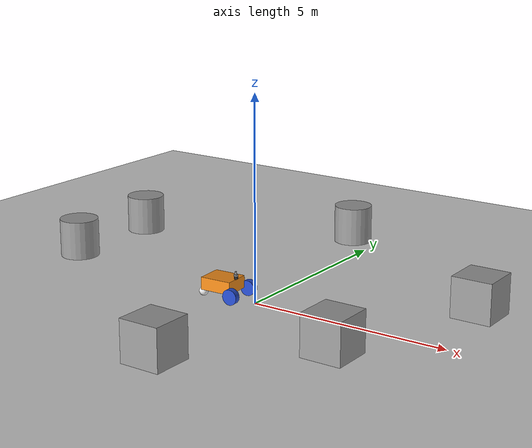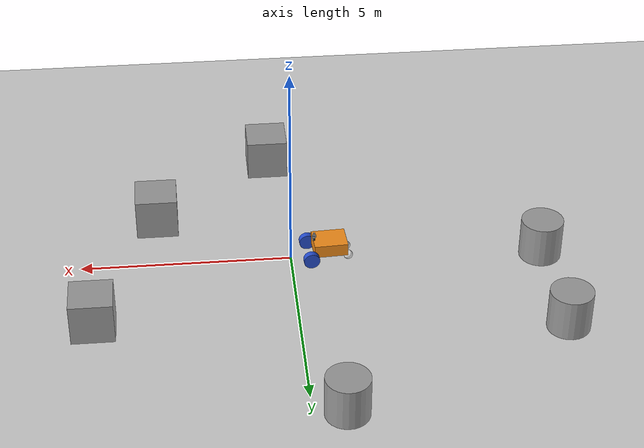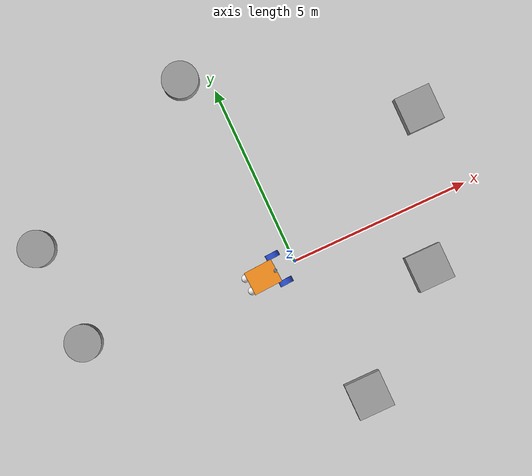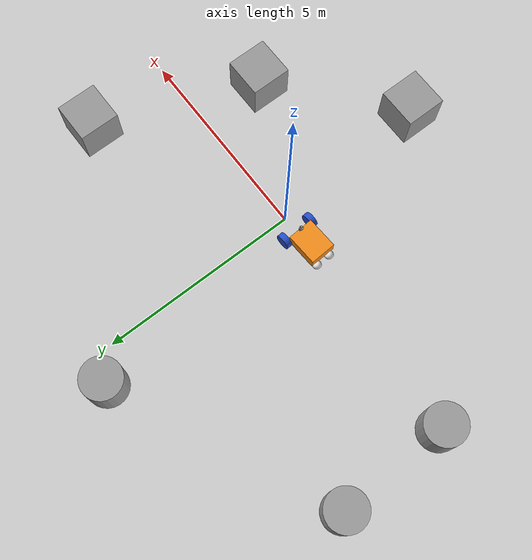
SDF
<sdf version="1.7">
 <world name="default">
  <light name="sun" type="directional">
   <pose>0 0 10 0 -0 0</pose>
   <diffuse>0.8 0.8 0.8 1</diffuse>
   <specular>0.2 0.2 0.2 1</specular>
   <attenuation>
    <range>1000</range>
    <constant>0.9</constant>
    <linear>0.01</linear>
    <quadratic>0.001</quadratic>
   </attenuation>
   <direction>-0.5 0.1 -0.9</direction>
   <spot><inner_angle>0</inner_angle><outer_angle>0</outer_angle><falloff>0</falloff></spot>
  </light>
  <model name="ground_plane">
   <static>1</static>
   <link name="link">
    <collision name="collision">
     <geometry><plane><normal>0 0 1</normal><size>100 100</size></plane></geometry>
     <surface><friction><ode><mu>100</mu><mu2>50</mu2></ode></friction></surface>
    </collision>
    <visual name="visual">
     <cast_shadows>0</cast_shadows>
     <geometry><plane><normal>0 0 1</normal><size>100 100</size></plane></geometry>
     <material>
      <script><uri>file://media/materials/scripts/gazebo.material</uri><name>Gazebo/Grey</name></script>
     </material>
    </visual>
   </link>
  </model>
  <gravity>0 0 -9.8</gravity>
  <magnetic_field>6e-06 2.3e-05 -4.2e-05</magnetic_field>
  <atmosphere type="adiabatic"/>
  <physics type="ode">
   <max_step_size>0.001</max_step_size>
   <real_time_factor>1</real_time_factor>
   <real_time_update_rate>1000</real_time_update_rate>
  </physics>
  <scene><ambient>0.4 0.4 0.4 1</ambient><background>0.7 0.7 0.7 1</background><shadows>1</shadows></scene>
  <audio><device>default</device></audio>
  <spherical_coordinates>
   <surface_model>EARTH_WGS84</surface_model>
   <latitude_deg>0</latitude_deg>
   <longitude_deg>0</longitude_deg>
   <elevation>0</elevation>
   <heading_deg>0</heading_deg>
  </spherical_coordinates>
  <model name="my_bot">
   <link name="base_link">
    <inertial>
     <pose>-0.512334 0 -0.02003 0 -0 0</pose>
     <mass>48.293</mass>
     <inertia>
      <ixx>2.24411</ixx>
      <ixy>0</ixy>
      <ixz>-0.308126</ixz>
      <iyy>3.50183</iyy>
      <iyz>0</iyz>
      <izz>4.66655</izz>
     </inertia>
    </inertial>
    <collision name="base_link_fixed_joint_lump__caster_wheel1_collision">
     <pose>-0.91 0.1875 -0.24 0 -0 0</pose>
     <geometry><sphere><radius>0.11</radius></sphere></geometry>
     <surface><friction><ode><mu>0.001</mu><mu2>0.001</mu2></ode></friction></surface>
    </collision>
    <collision name="base_link_fixed_joint_lump__caster_wheel2_collision_1">
     <pose>-0.91 -0.1875 -0.24 0 -0 0</pose>
     <geometry><sphere><radius>0.11</radius></sphere></geometry>
     <surface><friction><ode><mu>0.001</mu><mu2>0.001</mu2></ode></friction></surface>
    </collision>
    <collision name="base_link_fixed_joint_lump__chassis_collision_2">
     <pose>-0.485 0 -0.005 0 -0 0</pose>
     <geometry><box><size>0.8 0.65 0.31</size></box></geometry>
    </collision>
    <collision name="base_link_fixed_joint_lump__laser_frame_collision_3">
     <pose>-0.115 0 0.24 0 -0 3.14159</pose>
     <geometry><cylinder><length>0.04</length><radius>0.05</radius></cylinder></geometry>
    </collision>
    <visual name="base_link_fixed_joint_lump__caster_wheel1_visual">
     <pose>-0.91 0.1875 -0.24 0 -0 0</pose>
     <geometry><sphere><radius>0.11</radius></sphere></geometry>
     <material>
      <script><name>Gazebo/White</name><uri>file://media/materials/scripts/gazebo.material</uri></script>
     </material>
    </visual>
    <visual name="base_link_fixed_joint_lump__caster_wheel2_visual_1">
     <pose>-0.91 -0.1875 -0.24 0 -0 0</pose>
     <geometry><sphere><radius>0.11</radius></sphere></geometry>
     <material>
      <script><name>Gazebo/White</name><uri>file://media/materials/scripts/gazebo.material</uri></script>
     </material>
    </visual>
    <visual name="base_link_fixed_joint_lump__chassis_visual_2">
     <pose>-0.485 0 -0.005 0 -0 0</pose>
     <geometry><box><size>0.8 0.65 0.31</size></box></geometry>
     <material>
      <script><name>Gazebo/Orange</name><uri>file://media/materials/scripts/gazebo.material</uri></script>
     </material>
    </visual>
    <visual name="base_link_fixed_joint_lump__camera_link_visual_3">
     <pose>-0.105 0 0.18 0 -0 0</pose>
     <geometry><box><size>0.05 0.1 0.08</size></box></geometry>
     <material>
      <script><name>Gazebo/Black</name><uri>file://media/materials/scripts/gazebo.material</uri></script>
     </material>
    </visual>
    <visual name="base_link_fixed_joint_lump__laser_frame_visual_4">
     <pose>-0.115 0 0.24 0 -0 3.14159</pose>
     <geometry><cylinder><length>0.04</length><radius>0.05</radius></cylinder></geometry>
     <material>
      <script><name>Gazebo/Gray</name><uri>file://media/materials/scripts/gazebo.material</uri></script>
     </material>
    </visual>
    <visual name="base_link_fixed_joint_lump__laser_frame_visual_5">
     <pose>-0.115 0 0.28 0 -0 3.14159</pose>
     <geometry><cylinder><length>0.1</length><radius>0.025</radius></cylinder></geometry>
     <material>
      <script><name>Gazebo/Gray</name><uri>file://media/materials/scripts/gazebo.material</uri></script>
     </material>
    </visual>
    <sensor name="camera" type="camera">
     <visualize>1</visualize>
     <update_rate>10</update_rate>
     <camera>
      <horizontal_fov>1.089</horizontal_fov>
      <image><format>R8G8B8</format><width>640</width><height>480</height></image>
      <clip><near>0.05</near><far>20</far></clip>
     </camera>
     <plugin name="camera_controller" filename="libgazebo_ros_camera.so">
      <ros>
       <remapping>~/image_raw:=/camera/image_raw</remapping>
       <remapping>~/camera_info:=/camera/camera_info</remapping>
      </ros>
      <frame_name>camera_link_optical</frame_name>
     </plugin>
     <pose>-0.105 0 0.18 0 -0 0</pose>
    </sensor>
    <sensor name="laser" type="ray">
     <visualize>1</visualize>
     <update_rate>10</update_rate>
     <ray>
      <scan>
       <horizontal>
        <samples>360</samples>
        <min_angle>-3.14</min_angle>
        <max_angle>3.14</max_angle>
        <resolution>1</resolution>
       </horizontal>
       <vertical><samples>1</samples><min_angle>0</min_angle><max_angle>0</max_angle></vertical>
      </scan>
      <range><min>0.3</min><max>12</max></range>
     </ray>
     <plugin name="laser_controller" filename="libgazebo_ros_ray_sensor.so">
      <ros><remapping>~/out:=scan</remapping></ros>
      <output_type>sensor_msgs/LaserScan</output_type>
      <frame_name>laser_frame</frame_name>
     </plugin>
     <pose>-0.115 0 0.24 0 -0 3.14159</pose>
    </sensor>
   </link>
   <joint name="left_wheel_joint" type="revolute">
    <pose relative_to="base_link">0 0.39 -0.16 -1.5708 0 0</pose>
    <parent>base_link</parent>
    <child>left_wheel</child>
    <axis>
     <xyz>0 0 1</xyz>
     <limit><lower>-1e+16</lower><upper>1e+16</upper></limit>
     <dynamics><spring_reference>0</spring_reference><spring_stiffness>0</spring_stiffness></dynamics>
    </axis>
   </joint>
   <link name="left_wheel">
    <pose relative_to="left_wheel_joint">0 0 0 0 -0 0</pose>
    <inertial>
     <mass>3.17</mass>
     <inertia>
      <ixx>0.034553</ixx>
      <ixy>0</ixy>
      <ixz>0</ixz>
      <iyy>0.034553</iyy>
      <iyz>0</iyz>
      <izz>0.0572185</izz>
     </inertia>
    </inertial>
    <collision name="left_wheel_collision"><geometry><sphere><radius>0.19</radius></sphere></geometry></collision>
    <visual name="left_wheel_visual">
     <geometry><cylinder><length>0.15</length><radius>0.19</radius></cylinder></geometry>
     <material>
      <script><name>Gazebo/Blue</name><uri>file://media/materials/scripts/gazebo.material</uri></script>
     </material>
    </visual>
   </link>
   <joint name="right_wheel_joint" type="revolute">
    <pose relative_to="base_link">0 -0.39 -0.16 1.5708 -0 0</pose>
    <parent>base_link</parent>
    <child>right_wheel</child>
    <axis>
     <xyz>0 0 -1</xyz>
     <limit><lower>-1e+16</lower><upper>1e+16</upper></limit>
     <dynamics><spring_reference>0</spring_reference><spring_stiffness>0</spring_stiffness></dynamics>
    </axis>
   </joint>
   <link name="right_wheel">
    <pose relative_to="right_wheel_joint">0 0 0 0 -0 0</pose>
    <inertial>
     <mass>3.17</mass>
     <inertia>
      <ixx>0.034553</ixx>
      <ixy>0</ixy>
      <ixz>0</ixz>
      <iyy>0.034553</iyy>
      <iyz>0</iyz>
      <izz>0.0572185</izz>
     </inertia>
    </inertial>
    <collision name="right_wheel_collision">
     <geometry><sphere><radius>0.19</radius></sphere></geometry>
    </collision>
    <visual name="right_wheel_visual">
     <geometry><cylinder><length>0.15</length><radius>0.19</radius></cylinder></geometry>
     <material>
      <script><name>Gazebo/Blue</name><uri>file://media/materials/scripts/gazebo.material</uri></script>
     </material>
    </visual>
   </link>
   <static>0</static>
   <plugin name="gazebo_ros2_control" filename="libgazebo_ros2_control.so">
    <parameters>/home/dionsetiawan/dev_ws/install/articubot_one/share/articubot_one/config/my_controllers.yaml</parameters>
    <parameters>/home/dionsetiawan/dev_ws/install/articubot_one/share/articubot_one/config/gaz_ros2_ctl_use_sim.yaml</parameters>
   </plugin>
   <pose>-0.445837 -0.005924 0.349996 9e-06 3e-06 0.054234</pose>
  </model>
  <model name="unit_box">
   <pose>3.15709 -1.6385 0.499995 -1e-05 -0 -0</pose>
   <link name="link">
    <inertial>
     <mass>1</mass>
     <inertia>
      <ixx>0.166667</ixx>
      <ixy>0</ixy>
      <ixz>0</ixz>
      <iyy>0.166667</iyy>
      <iyz>0</iyz>
      <izz>0.166667</izz>
     </inertia>
    </inertial>
    <collision name="collision"><geometry><box><size>1 1 1</size></box></geometry></collision>
    <visual name="visual">
     <geometry><box><size>1 1 1</size></box></geometry>
     <material>
      <script><name>Gazebo/Grey</name><uri>file://media/materials/scripts/gazebo.material</uri></script>
     </material>
    </visual>
   </link>
  </model>
  <model name="unit_box_0">
   <pose>4.65916 2.26838 0.499995 0 1e-05 0</pose>
   <link name="link">
    <inertial>
     <mass>1</mass>
     <inertia>
      <ixx>0.166667</ixx>
      <ixy>0</ixy>
      <ixz>0</ixz>
      <iyy>0.166667</iyy>
      <iyz>0</iyz>
      <izz>0.166667</izz>
     </inertia>
    </inertial>
    <collision name="collision"><geometry><box><size>1 1 1</size></box></geometry></collision>
    <visual name="visual">
     <geometry><box><size>1 1 1</size></box></geometry>
     <material>
      <script><name>Gazebo/Grey</name><uri>file://media/materials/scripts/gazebo.material</uri></script>
     </material>
    </visual>
   </link>
  </model>
  <model name="unit_cylinder">
   <pose>-0.732592 5.6021 0.5 0 0 -0.06385</pose>
   <link name="link">
    <inertial>
     <mass>1</mass>
     <inertia><ixx>0.145833</ixx><ixy>0</ixy><ixz>0</ixz><iyy>0.145833</iyy><iyz>0</iyz><izz>0.125</izz></inertia>
    </inertial>
    <collision name="collision">
     <geometry><cylinder><radius>0.5</radius><length>1</length></cylinder></geometry>
    </collision>
    <visual name="visual">
     <geometry><cylinder><radius>0.5</radius><length>1</length></cylinder></geometry>
     <material>
      <script><name>Gazebo/Grey</name><uri>file://media/materials/scripts/gazebo.material</uri></script>
     </material>
    </visual>
   </link>
  </model>
  <model name="unit_box_1">
   <pose>0.304697 -4.02562 0.499995 0 1e-05 0</pose>
   <link name="link">
    <inertial>
     <mass>1</mass>
     <inertia>
      <ixx>0.166667</ixx>
      <ixy>0</ixy>
      <ixz>0</ixz>
      <iyy>0.166667</iyy>
      <iyz>0</iyz>
      <izz>0.166667</izz>
     </inertia>
    </inertial>
    <collision name="collision"><geometry><box><size>1 1 1</size></box></geometry></collision>
    <visual name="visual">
     <geometry><box><size>1 1 1</size></box></geometry>
     <material>
      <script><name>Gazebo/Grey</name><uri>file://media/materials/scripts/gazebo.material</uri></script>
     </material>
    </visual>
   </link>
  </model>
  <model name="unit_cylinder_0">
   <pose>-5.96247 0.38834 0.499993 -3e-06 -4e-06 -0</pose>
   <link name="link">
    <inertial>
     <mass>1</mass>
     <inertia><ixx>0.145833</ixx><ixy>0</ixy><ixz>0</ixz><iyy>0.145833</iyy><iyz>0</iyz><izz>0.125</izz></inertia>
    </inertial>
    <collision name="collision">
     <geometry><cylinder><radius>0.5</radius><length>1</length></cylinder></geometry>
    </collision>
    <visual name="visual">
     <geometry><cylinder><radius>0.5</radius><length>1</length></cylinder></geometry>
     <material>
      <script><name>Gazebo/Grey</name><uri>file://media/materials/scripts/gazebo.material</uri></script>
     </material>
    </visual>
   </link>
  </model>
  <model name="unit_cylinder_1">
   <pose>-6.03959 3.15745 0.499997 3e-06 4e-06 -0</pose>
   <link name="link">
    <inertial>
     <mass>1</mass>
     <inertia><ixx>0.145833</ixx><ixy>0</ixy><ixz>0</ixz><iyy>0.145833</iyy><iyz>0</iyz><izz>0.125</izz></inertia>
    </inertial>
    <collision name="collision">
     <geometry><cylinder><radius>0.5</radius><length>1</length></cylinder></geometry>
    </collision>
    <visual name="visual">
     <geometry><cylinder><radius>0.5</radius><length>1</length></cylinder></geometry>
     <material>
      <script><name>Gazebo/Grey</name><uri>file://media/materials/scripts/gazebo.material</uri></script>
     </material>
    </visual>
   </link>
  </model>
  <light name="user_point_light_0" type="point">
   <pose>-2.80755 2.37577 1 0 -0 0</pose>
   <diffuse>0.5 0.5 0.5 1</diffuse>
   <specular>0.1 0.1 0.1 1</specular>
   <attenuation>
    <range>20</range>
    <constant>0.5</constant>
    <linear>0.01</linear>
    <quadratic>0.001</quadratic>
   </attenuation>
   <cast_shadows>0</cast_shadows>
   <direction>0 0 -1</direction>
  </light>
  <light name="user_spot_light_0" type="spot">
   <pose>-0.421481 0.441051 1 0 -0 0</pose>
   <diffuse>0.5 0.5 0.5 1</diffuse>
   <specular>0.1 0.1 0.1 1</specular>
   <direction>0 0 -1</direction>
   <attenuation>
    <range>20</range>
    <constant>0.5</constant>
    <linear>0.01</linear>
    <quadratic>0.001</quadratic>
   </attenuation>
   <cast_shadows>0</cast_shadows>
   <spot><inner_angle>0.6</inner_angle><outer_angle>1</outer_angle><falloff>1</falloff></spot>
  </light>
  <light name="user_spot_light_1" type="spot">
   <pose>0.162117 -0.205892 1 0 -0 0</pose>
   <diffuse>0.5 0.5 0.5 1</diffuse>
   <specular>0.1 0.1 0.1 1</specular>
   <direction>0 0 -1</direction>
   <attenuation>
    <range>20</range>
    <constant>0.5</constant>
    <linear>0.01</linear>
    <quadratic>0.001</quadratic>
   </attenuation>
   <cast_shadows>0</cast_shadows>
   <spot><inner_angle>0.6</inner_angle><outer_angle>1</outer_angle><falloff>1</falloff></spot>
  </light>
  <light name="user_spot_light_2" type="spot">
   <pose>-7.34131 1.28072 1 0 -0 0</pose>
   <diffuse>0.5 0.5 0.5 1</diffuse>
   <specular>0.1 0.1 0.1 1</specular>
   <direction>0 0 -1</direction>
   <attenuation>
    <range>20</range>
    <constant>0.5</constant>
    <linear>0.01</linear>
    <quadratic>0.001</quadratic>
   </attenuation>
   <cast_shadows>0</cast_shadows>
   <spot><inner_angle>0.6</inner_angle><outer_angle>1</outer_angle><falloff>1</falloff></spot>
  </light>
  <light name="user_spot_light_3" type="spot">
   <pose>3.71443 2.39864 1 0 -0 0</pose>
   <diffuse>0.5 0.5 0.5 1</diffuse>
   <specular>0.1 0.1 0.1 1</specular>
   <direction>0 0 -1</direction>
   <attenuation>
    <range>20</range>
    <constant>0.5</constant>
    <linear>0.01</linear>
    <quadratic>0.001</quadratic>
   </attenuation>
   <cast_shadows>0</cast_shadows>
   <spot><inner_angle>0.6</inner_angle><outer_angle>1</outer_angle><falloff>1</falloff></spot>
  </light>
  <light name="user_directional_light_0" type="directional">
   <pose>-1.35688 -1.33905 1 0 -0 0</pose>
   <diffuse>0.5 0.5 0.5 1</diffuse>
   <specular>0.1 0.1 0.1 1</specular>
   <direction>0.1 0.1 -0.9</direction>
   <attenuation>
    <range>20</range>
    <constant>0.5</constant>
    <linear>0.01</linear>
    <quadratic>0.001</quadratic>
   </attenuation>
  </light>
  <light name="user_directional_light_1" type="directional">
   <pose>-5.59273 -7.99881 1 0 -0 0</pose>
   <diffuse>0.5 0.5 0.5 1</diffuse>
   <specular>0.1 0.1 0.1 1</specular>
   <direction>0.1 0.1 -0.9</direction>
   <attenuation>
    <range>20</range>
    <constant>0.5</constant>
    <linear>0.01</linear>
    <quadratic>0.001</quadratic>
   </attenuation>
  </light>
  <light name="user_directional_light_2" type="directional">
   <pose>1.88961 2.46997 1 0 -0 0</pose>
   <diffuse>0.5 0.5 0.5 1</diffuse>
   <specular>0.1 0.1 0.1 1</specular>
   <direction>0.1 0.1 -0.9</direction>
   <attenuation>
    <range>20</range>
    <constant>0.5</constant>
    <linear>0.01</linear>
    <quadratic>0.001</quadratic>
   </attenuation>
  </light>
 </world>
</sdf>
